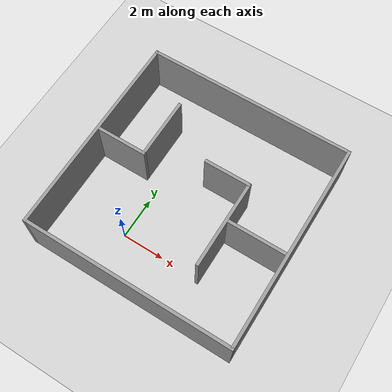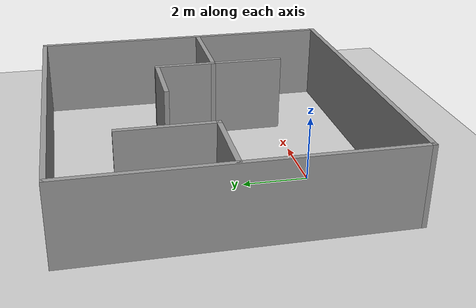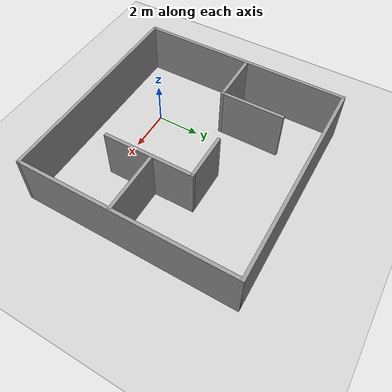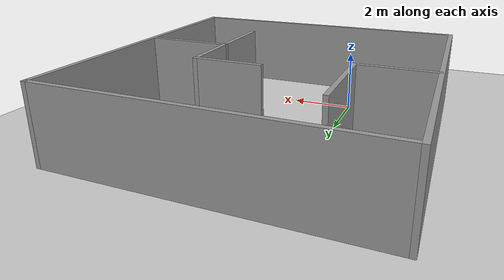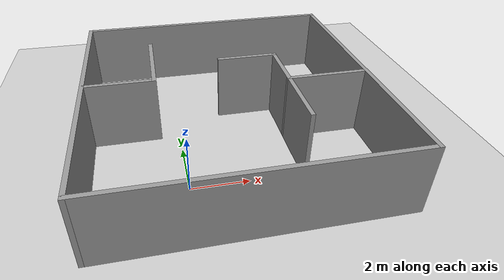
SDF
<sdf version="1.7">
 <world name="default">
  <light name="sun" type="directional">
   <pose>0 0 10 0 -0 0</pose>
   <diffuse>0.8 0.8 0.8 1</diffuse>
   <specular>0.2 0.2 0.2 1</specular>
   <attenuation>
    <range>1000</range>
    <constant>0.9</constant>
    <linear>0.01</linear>
    <quadratic>0.001</quadratic>
   </attenuation>
   <direction>-0.5 0.1 -0.9</direction>
   <spot><inner_angle>0</inner_angle><outer_angle>0</outer_angle><falloff>0</falloff></spot>
  </light>
  <model name="ground_plane">
   <static>1</static>
   <link name="link">
    <collision name="collision">
     <geometry><plane><normal>0 0 1</normal><size>100 100</size></plane></geometry>
     <surface>
      <contact><collide_bitmask>65535</collide_bitmask></contact>
      <friction><ode><mu>100</mu><mu2>50</mu2></ode></friction>
     </surface>
    </collision>
    <visual name="visual">
     <cast_shadows>0</cast_shadows>
     <geometry><plane><normal>0 0 1</normal><size>100 100</size></plane></geometry>
     <material>
      <script><uri>file://media/materials/scripts/gazebo.material</uri><name>Gazebo/Grey</name></script>
     </material>
    </visual>
   </link>
  </model>
  <gravity>0 0 -9.8</gravity>
  <magnetic_field>6e-06 2.3e-05 -4.2e-05</magnetic_field>
  <atmosphere type="adiabatic"/>
  <physics type="ode">
   <max_step_size>0.001</max_step_size>
   <real_time_factor>1</real_time_factor>
   <real_time_update_rate>1000</real_time_update_rate>
  </physics>
  <scene><ambient>0.4 0.4 0.4 1</ambient><background>0.7 0.7 0.7 1</background><shadows>1</shadows></scene>
  <spherical_coordinates>
   <surface_model>EARTH_WGS84</surface_model>
   <latitude_deg>0</latitude_deg>
   <longitude_deg>0</longitude_deg>
   <elevation>0</elevation>
   <heading_deg>0</heading_deg>
  </spherical_coordinates>
  <model name="room4">
   <pose>1.775 2.685 0 0 -0 0</pose>
   <link name="Wall_0">
    <collision name="Wall_0_Collision">
     <geometry><box><size>10 0.15 2.5</size></box></geometry>
     <pose>0 0 1.25 0 -0 0</pose>
    </collision>
    <visual name="Wall_0_Visual">
     <pose>0 0 1.25 0 -0 0</pose>
     <geometry><box><size>10 0.15 2.5</size></box></geometry>
     <material>
      <script><uri>file://media/materials/scripts/gazebo.material</uri><name>Gazebo/Grey</name></script>
      <ambient>1 1 1 1</ambient>
     </material>
     <meta><layer>0</layer></meta>
    </visual>
    <pose>-4.925 0 0 0 -0 1.5708</pose>
   </link>
   <link name="Wall_1">
    <collision name="Wall_1_Collision">
     <geometry><box><size>10 0.15 2.5</size></box></geometry>
     <pose>0 0 1.25 0 -0 0</pose>
    </collision>
    <visual name="Wall_1_Visual">
     <pose>0 0 1.25 0 -0 0</pose>
     <geometry><box><size>10 0.15 2.5</size></box></geometry>
     <material>
      <script><uri>file://media/materials/scripts/gazebo.material</uri><name>Gazebo/Grey</name></script>
      <ambient>1 1 1 1</ambient>
     </material>
     <meta><layer>0</layer></meta>
    </visual>
    <pose>0 4.925 0 0 -0 0</pose>
   </link>
   <link name="Wall_11">
    <collision name="Wall_11_Collision">
     <geometry><box><size>3 0.15 2.5</size></box></geometry>
     <pose>0 0 1.25 0 -0 0</pose>
    </collision>
    <visual name="Wall_11_Visual">
     <pose>0 0 1.25 0 -0 0</pose>
     <geometry><box><size>3 0.15 2.5</size></box></geometry>
     <material>
      <script><uri>file://media/materials/scripts/gazebo.material</uri><name>Gazebo/Grey</name></script>
      <ambient>1 1 1 1</ambient>
     </material>
     <meta><layer>0</layer></meta>
    </visual>
    <pose>3.48978 -0.54339 0 0 -0 0</pose>
   </link>
   <link name="Wall_18">
    <collision name="Wall_18_Collision">
     <geometry><box><size>2.25 0.15 2.5</size></box></geometry>
     <pose>0 0 1.25 0 -0 0</pose>
    </collision>
    <visual name="Wall_18_Visual">
     <pose>0 0 1.25 0 -0 0</pose>
     <geometry><box><size>2.25 0.15 2.5</size></box></geometry>
     <material>
      <script><uri>file://media/materials/scripts/gazebo.material</uri><name>Gazebo/Grey</name></script>
      <ambient>1 1 1 1</ambient>
     </material>
     <meta><layer>0</layer></meta>
    </visual>
    <pose>1.01478 1.32261 0 0 -0 3.14159</pose>
   </link>
   <link name="Wall_2">
    <collision name="Wall_2_Collision">
     <geometry><box><size>10 0.15 2.5</size></box></geometry>
     <pose>0 0 1.25 0 -0 0</pose>
    </collision>
    <visual name="Wall_2_Visual">
     <pose>0 0 1.25 0 -0 0</pose>
     <geometry><box><size>10 0.15 2.5</size></box></geometry>
     <material>
      <script><uri>file://media/materials/scripts/gazebo.material</uri><name>Gazebo/Grey</name></script>
      <ambient>1 1 1 1</ambient>
     </material>
     <meta><layer>0</layer></meta>
    </visual>
    <pose>4.925 0 0 0 -0 -1.5708</pose>
   </link>
   <link name="Wall_3">
    <collision name="Wall_3_Collision">
     <geometry><box><size>10 0.15 2.5</size></box></geometry>
     <pose>0 0 1.25 0 -0 0</pose>
    </collision>
    <visual name="Wall_3_Visual">
     <pose>0 0 1.25 0 -0 0</pose>
     <geometry><box><size>10 0.15 2.5</size></box></geometry>
     <material>
      <script><uri>file://media/materials/scripts/gazebo.material</uri><name>Gazebo/Grey</name></script>
      <ambient>1 1 1 1</ambient>
     </material>
     <meta><layer>0</layer></meta>
    </visual>
    <pose>0 -4.925 0 0 -0 3.14159</pose>
   </link>
   <link name="Wall_6">
    <collision name="Wall_6_Collision">
     <geometry><box><size>3 0.15 2.5</size></box></geometry>
     <pose>0 0 1.25 0 -0 0</pose>
    </collision>
    <visual name="Wall_6_Visual">
     <pose>0 0 1.25 0 -0 0</pose>
     <geometry><box><size>3 0.15 2.5</size></box></geometry>
     <material>
      <script><uri>file://media/materials/scripts/gazebo.material</uri><name>Gazebo/Grey</name></script>
      <ambient>1 1 1 1</ambient>
     </material>
     <meta><layer>0</layer></meta>
    </visual>
    <pose>-2.52375 1.64126 0 0 -0 -1.5708</pose>
   </link>
   <link name="Wall_7">
    <collision name="Wall_7_Collision">
     <geometry><box><size>2.5 0.15 2.5</size></box></geometry>
     <pose>0 0 1.25 0 -0 0</pose>
    </collision>
    <visual name="Wall_7_Visual">
     <pose>0 0 1.25 0 -0 0</pose>
     <geometry><box><size>2.5 0.15 2.5</size></box></geometry>
     <material>
      <script><uri>file://media/materials/scripts/gazebo.material</uri><name>Gazebo/Grey</name></script>
      <ambient>1 1 1 1</ambient>
     </material>
     <meta><layer>0</layer></meta>
    </visual>
    <pose>-3.69875 0.216257 0 0 -0 3.14159</pose>
   </link>
   <link name="Wall_9">
    <collision name="Wall_9_Collision">
     <geometry><box><size>4.25 0.15 2.5</size></box></geometry>
     <pose>0 0 1.25 0 -0 0</pose>
    </collision>
    <visual name="Wall_9_Visual">
     <pose>0 0 1.25 0 -0 0</pose>
     <geometry><box><size>4.25 0.15 2.5</size></box></geometry>
     <material>
      <script><uri>file://media/materials/scripts/gazebo.material</uri><name>Gazebo/Grey</name></script>
      <ambient>1 1 1 1</ambient>
     </material>
     <meta><layer>0</layer></meta>
    </visual>
    <pose>2.06478 -0.727386 0 0 -0 -1.5708</pose>
   </link>
   <static>1</static>
  </model>
 </world>
</sdf>
